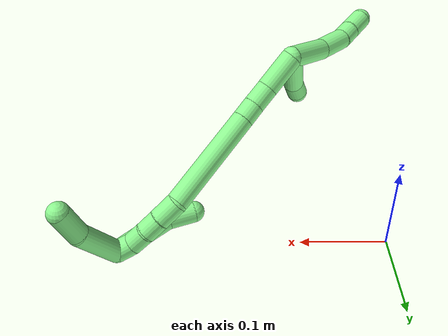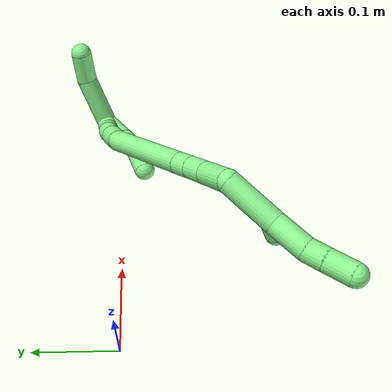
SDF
<sdf version="1.7">
 <world name="default">
  <model name="photoneo_s_sensor">
   <static>1</static>
   <pose>0 0 2 1.57079 1.57079 3.14159</pose>
   <link name="link">
    <inertial><mass>0.1</mass></inertial>
    <sensor name="sensor" type="depth">
     <update_rate>30</update_rate>
     <camera>
      <horizontal_fov>1.22</horizontal_fov>
      <image><width>1920</width><height>1200</height><format>B8G8R8</format></image>
      <clip><near>0.1</near><far>4</far></clip>
      <depth_camera><output>points</output></depth_camera>
     </camera>
     <plugin name="camera_plugin" filename="libgazebo_ros_depth_camera.so">
      <baseline>0.2</baseline>
      <alwaysOn>1</alwaysOn>
      <updateRate>0.0</updateRate>
      <cameraName>camera_ir</cameraName>
      <imageTopicName>/camera/color/image_raw</imageTopicName>
      <cameraInfoTopicName>/camera/color/camera_info</cameraInfoTopicName>
      <depthImageTopicName>/camera/depth/image_raw</depthImageTopicName>
      <depthImageCameraInfoTopicName>/camera/depth/camera_info</depthImageCameraInfoTopicName>
      <pointCloudTopicName>/camera/depth/points</pointCloudTopicName>
      <frameName>fr_optical</frameName>
      <pointCloudCutoff>0.1</pointCloudCutoff>
      <pointCloudCutoffMax>2.0</pointCloudCutoffMax>
      <distortionK1>0</distortionK1>
      <distortionK2>0</distortionK2>
      <distortionK3>0</distortionK3>
      <distortionT1>0</distortionT1>
      <distortionT2>0</distortionT2>
      <CxPrime>0</CxPrime>
      <Cx>0</Cx>
      <Cy>0</Cy>
      <focalLength>0</focalLength>
      <hackBaseline>0</hackBaseline>
     </plugin>
    </sensor>
   </link>
  </model>
  <model name="bin">
   <static>1</static>
   <link name="bottom">
    <collision name="collision-bottom">
     <pose>0 0 -0.01 0 -0 0</pose>
     <geometry><box><size>0.8 0.6 0.02</size></box></geometry>
     <surface>
      <friction><ode><mu>100</mu><mu2>100</mu2></ode></friction>
      <contact><collide_bitmask>65535</collide_bitmask></contact>
     </surface>
    </collision>
   </link>
   <link name="west_wall">
    <collision name="collision-west_wall">
     <pose>-0.41 0 0.1 0 -0 0</pose>
     <geometry><box><size>0.02 0.6 0.2</size></box></geometry>
     <surface>
      <friction><ode><mu>100</mu><mu2>100</mu2></ode></friction>
      <contact><collide_bitmask>65535</collide_bitmask></contact>
     </surface>
    </collision>
   </link>
   <link name="east_wall">
    <collision name="collision-east_wall">
     <pose>0.41 0 0.1 0 -0 0</pose>
     <geometry><box><size>0.02 0.6 0.2</size></box></geometry>
     <surface>
      <friction><ode><mu>100</mu><mu2>100</mu2></ode></friction>
      <contact><collide_bitmask>65535</collide_bitmask></contact>
     </surface>
    </collision>
   </link>
   <link name="south_wall">
    <collision name="collision-south_wall">
     <pose>0 -0.31 0.1 0 -0 0</pose>
     <geometry><box><size>0.8 0.02 0.2</size></box></geometry>
     <surface>
      <friction><ode><mu>100</mu><mu2>100</mu2></ode></friction>
      <contact><collide_bitmask>65535</collide_bitmask></contact>
     </surface>
    </collision>
   </link>
   <link name="north_wall">
    <collision name="collision-north_wall">
     <pose>0 0.31 0.1 0 -0 0</pose>
     <geometry><box><size>0.8 0.02 0.2</size></box></geometry>
     <surface>
      <friction><ode><mu>100</mu><mu2>100</mu2></ode></friction>
      <contact><collide_bitmask>65535</collide_bitmask></contact>
     </surface>
    </collision>
   </link>
  </model>
  <model name="13">
   <static>0</static>
   <link name="13">
    <collision name="collision-cylinder-e_1_2_8">
     <pose>-0.025661 -0.013477 -0.008015 2.10731 -1.02227 -1.55677</pose>
     <geometry><cylinder><radius>0.0125</radius><length>0.060145</length></cylinder></geometry>
     <surface>
      <friction><ode><mu>1.16</mu><mu2>1.16</mu2><slip1>0</slip1><slip2>0</slip2></ode></friction>
      <contact><ode><kp>1e+06</kp><kd>1</kd><max_vel>0</max_vel><min_depth>0.001</min_depth></ode></contact>
     </surface>
    </collision>
    <visual name="visual-cylinder-e_1_2_8">
     <pose>-0.025661 -0.013477 -0.008015 2.10731 -1.02227 -1.55677</pose>
     <geometry><cylinder><radius>0.0125</radius><length>0.060145</length></cylinder></geometry>
     <material><ambient>0.564706 0.984314 0.572549 1</ambient></material>
    </visual>
    <collision name="collision-cylinder-e_2_8_9">
     <pose>-0.069293 -0.035043 -0.017036 1.69451 -1.14502 -1.26067</pose>
     <geometry><cylinder><radius>0.0125</radius><length>0.039466</length></cylinder></geometry>
     <surface>
      <friction><ode><mu>1.16</mu><mu2>1.16</mu2><slip1>0</slip1><slip2>0</slip2></ode></friction>
      <contact><ode><kp>1e+06</kp><kd>1</kd><max_vel>0</max_vel><min_depth>0.001</min_depth></ode></contact>
     </surface>
    </collision>
    <visual name="visual-cylinder-e_2_8_9">
     <pose>-0.069293 -0.035043 -0.017036 1.69451 -1.14502 -1.26067</pose>
     <geometry><cylinder><radius>0.0125</radius><length>0.039466</length></cylinder></geometry>
     <material><ambient>0.564706 0.984314 0.572549 1</ambient></material>
    </visual>
    <collision name="collision-cylinder-e_3_9_10">
     <pose>-0.09587 -0.048945 -0.016996 1.39284 -0.969251 -0.829443</pose>
     <geometry><cylinder><radius>0.0125</radius><length>0.020877</length></cylinder></geometry>
     <surface>
      <friction><ode><mu>1.16</mu><mu2>1.16</mu2><slip1>0</slip1><slip2>0</slip2></ode></friction>
      <contact><ode><kp>1e+06</kp><kd>1</kd><max_vel>0</max_vel><min_depth>0.001</min_depth></ode></contact>
     </surface>
    </collision>
    <visual name="visual-cylinder-e_3_9_10">
     <pose>-0.09587 -0.048945 -0.016996 1.39284 -0.969251 -0.829443</pose>
     <geometry><cylinder><radius>0.0125</radius><length>0.020877</length></cylinder></geometry>
     <material><ambient>0.564706 0.984314 0.572549 1</ambient></material>
    </visual>
    <collision name="collision-cylinder-e_4_10_6">
     <pose>-0.116516 -0.063178 -0.014573 1.40861 -0.954359 -0.827854</pose>
     <geometry><cylinder><radius>0.0125</radius><length>0.029512</length></cylinder></geometry>
     <surface>
      <friction><ode><mu>1.16</mu><mu2>1.16</mu2><slip1>0</slip1><slip2>0</slip2></ode></friction>
      <contact><ode><kp>1e+06</kp><kd>1</kd><max_vel>0</max_vel><min_depth>0.001</min_depth></ode></contact>
     </surface>
    </collision>
    <visual name="visual-cylinder-e_4_10_6">
     <pose>-0.116516 -0.063178 -0.014573 1.40861 -0.954359 -0.827854</pose>
     <geometry><cylinder><radius>0.0125</radius><length>0.029512</length></cylinder></geometry>
     <material><ambient>0.564706 0.984314 0.572549 1</ambient></material>
    </visual>
    <collision name="collision-cylinder-e_1_2_11">
     <pose>-0.011994 -0.018162 -0.032855 2.63662 -0.30925 -1.08694</pose>
     <geometry><cylinder><radius>0.0125</radius><length>0.078821</length></cylinder></geometry>
     <surface>
      <friction><ode><mu>1.16</mu><mu2>1.16</mu2><slip1>0</slip1><slip2>0</slip2></ode></friction>
      <contact><ode><kp>1e+06</kp><kd>1</kd><max_vel>0</max_vel><min_depth>0.001</min_depth></ode></contact>
     </surface>
    </collision>
    <visual name="visual-cylinder-e_1_2_11">
     <pose>-0.011994 -0.018162 -0.032855 2.63662 -0.30925 -1.08694</pose>
     <geometry><cylinder><radius>0.0125</radius><length>0.078821</length></cylinder></geometry>
     <material><ambient>0.564706 0.984314 0.572549 1</ambient></material>
    </visual>
    <collision name="collision-cylinder-e_2_11_5">
     <pose>-0.028158 -0.037962 -0.075306 2.97241 -0.404713 -2.35778</pose>
     <geometry><cylinder><radius>0.0125</radius><length>0.021179</length></cylinder></geometry>
     <surface>
      <friction><ode><mu>1.16</mu><mu2>1.16</mu2><slip1>0</slip1><slip2>0</slip2></ode></friction>
      <contact><ode><kp>1e+06</kp><kd>1</kd><max_vel>0</max_vel><min_depth>0.001</min_depth></ode></contact>
     </surface>
    </collision>
    <visual name="visual-cylinder-e_2_11_5">
     <pose>-0.028158 -0.037962 -0.075306 2.97241 -0.404713 -2.35778</pose>
     <geometry><cylinder><radius>0.0125</radius><length>0.021179</length></cylinder></geometry>
     <material><ambient>0.564706 0.984314 0.572549 1</ambient></material>
    </visual>
    <collision name="collision-cylinder-e_1_2_12">
     <pose>0.016522 0.005661 -0.013792 -2.75212 0.836673 -2.30647</pose>
     <geometry><cylinder><radius>0.0125</radius><length>0.044509</length></cylinder></geometry>
     <surface>
      <friction><ode><mu>1.16</mu><mu2>1.16</mu2><slip1>0</slip1><slip2>0</slip2></ode></friction>
      <contact><ode><kp>1e+06</kp><kd>1</kd><max_vel>0</max_vel><min_depth>0.001</min_depth></ode></contact>
     </surface>
    </collision>
    <visual name="visual-cylinder-e_1_2_12">
     <pose>0.016522 0.005661 -0.013792 -2.75212 0.836673 -2.30647</pose>
     <geometry><cylinder><radius>0.0125</radius><length>0.044509</length></cylinder></geometry>
     <material><ambient>0.564706 0.984314 0.572549 1</ambient></material>
    </visual>
    <collision name="collision-cylinder-e_2_12_13">
     <pose>0.043019 0.016233 -0.033821 -2.4745 0.89869 -1.89554</pose>
     <geometry><cylinder><radius>0.0125</radius><length>0.025495</length></cylinder></geometry>
     <surface>
      <friction><ode><mu>1.16</mu><mu2>1.16</mu2><slip1>0</slip1><slip2>0</slip2></ode></friction>
      <contact><ode><kp>1e+06</kp><kd>1</kd><max_vel>0</max_vel><min_depth>0.001</min_depth></ode></contact>
     </surface>
    </collision>
    <visual name="visual-cylinder-e_2_12_13">
     <pose>0.043019 0.016233 -0.033821 -2.4745 0.89869 -1.89554</pose>
     <geometry><cylinder><radius>0.0125</radius><length>0.025495</length></cylinder></geometry>
     <material><ambient>0.564706 0.984314 0.572549 1</ambient></material>
    </visual>
    <collision name="collision-cylinder-e_3_13_14">
     <pose>0.061085 0.025595 -0.044755 -2.38316 0.89602 -1.75703</pose>
     <geometry><cylinder><radius>0.0125</radius><length>0.020722</length></cylinder></geometry>
     <surface>
      <friction><ode><mu>1.16</mu><mu2>1.16</mu2><slip1>0</slip1><slip2>0</slip2></ode></friction>
      <contact><ode><kp>1e+06</kp><kd>1</kd><max_vel>0</max_vel><min_depth>0.001</min_depth></ode></contact>
     </surface>
    </collision>
    <visual name="visual-cylinder-e_3_13_14">
     <pose>0.061085 0.025595 -0.044755 -2.38316 0.89602 -1.75703</pose>
     <geometry><cylinder><radius>0.0125</radius><length>0.020722</length></cylinder></geometry>
     <material><ambient>0.564706 0.984314 0.572549 1</ambient></material>
    </visual>
    <collision name="collision-cylinder-e_4_14_15">
     <pose>0.115776 0.055115 -0.076265 -2.38979 0.903627 -1.77605</pose>
     <geometry><cylinder><radius>0.0125</radius><length>0.11864</length></cylinder></geometry>
     <surface>
      <friction><ode><mu>1.16</mu><mu2>1.16</mu2><slip1>0</slip1><slip2>0</slip2></ode></friction>
      <contact><ode><kp>1e+06</kp><kd>1</kd><max_vel>0</max_vel><min_depth>0.001</min_depth></ode></contact>
     </surface>
    </collision>
    <visual name="visual-cylinder-e_4_14_15">
     <pose>0.115776 0.055115 -0.076265 -2.38979 0.903627 -1.77605</pose>
     <geometry><cylinder><radius>0.0125</radius><length>0.11864</length></cylinder></geometry>
     <material><ambient>0.564706 0.984314 0.572549 1</ambient></material>
    </visual>
    <collision name="collision-cylinder-e_5_15_16">
     <pose>0.173384 0.081888 -0.11117 -2.93393 0.926432 -2.73022</pose>
     <geometry><cylinder><radius>0.0125</radius><length>0.027538</length></cylinder></geometry>
     <surface>
      <friction><ode><mu>1.16</mu><mu2>1.16</mu2><slip1>0</slip1><slip2>0</slip2></ode></friction>
      <contact><ode><kp>1e+06</kp><kd>1</kd><max_vel>0</max_vel><min_depth>0.001</min_depth></ode></contact>
     </surface>
    </collision>
    <visual name="visual-cylinder-e_5_15_16">
     <pose>0.173384 0.081888 -0.11117 -2.93393 0.926432 -2.73022</pose>
     <geometry><cylinder><radius>0.0125</radius><length>0.027538</length></cylinder></geometry>
     <material><ambient>0.564706 0.984314 0.572549 1</ambient></material>
    </visual>
    <collision name="collision-cylinder-e_6_16_17">
     <pose>0.192824 0.084448 -0.12586 -3.01286 0.902896 -2.87726</pose>
     <geometry><cylinder><radius>0.0125</radius><length>0.02148</length></cylinder></geometry>
     <surface>
      <friction><ode><mu>1.16</mu><mu2>1.16</mu2><slip1>0</slip1><slip2>0</slip2></ode></friction>
      <contact><ode><kp>1e+06</kp><kd>1</kd><max_vel>0</max_vel><min_depth>0.001</min_depth></ode></contact>
     </surface>
    </collision>
    <visual name="visual-cylinder-e_6_16_17">
     <pose>0.192824 0.084448 -0.12586 -3.01286 0.902896 -2.87726</pose>
     <geometry><cylinder><radius>0.0125</radius><length>0.02148</length></cylinder></geometry>
     <material><ambient>0.564706 0.984314 0.572549 1</ambient></material>
    </visual>
    <collision name="collision-cylinder-e_7_17_18">
     <pose>0.208862 0.084409 -0.140024 3.02423 0.784403 2.85941</pose>
     <geometry><cylinder><radius>0.0125</radius><length>0.021531</length></cylinder></geometry>
     <surface>
      <friction><ode><mu>1.16</mu><mu2>1.16</mu2><slip1>0</slip1><slip2>0</slip2></ode></friction>
      <contact><ode><kp>1e+06</kp><kd>1</kd><max_vel>0</max_vel><min_depth>0.001</min_depth></ode></contact>
     </surface>
    </collision>
    <visual name="visual-cylinder-e_7_17_18">
     <pose>0.208862 0.084409 -0.140024 3.02423 0.784403 2.85941</pose>
     <geometry><cylinder><radius>0.0125</radius><length>0.021531</length></cylinder></geometry>
     <material><ambient>0.564706 0.984314 0.572549 1</ambient></material>
    </visual>
    <collision name="collision-cylinder-e_8_18_1">
     <pose>0.225426 0.082752 -0.152062 2.97214 1.10224 2.86699</pose>
     <geometry><cylinder><radius>0.0125</radius><length>0.020085</length></cylinder></geometry>
     <surface>
      <friction><ode><mu>1.16</mu><mu2>1.16</mu2><slip1>0</slip1><slip2>0</slip2></ode></friction>
      <contact><ode><kp>1e+06</kp><kd>1</kd><max_vel>0</max_vel><min_depth>0.001</min_depth></ode></contact>
     </surface>
    </collision>
    <visual name="visual-cylinder-e_8_18_1">
     <pose>0.225426 0.082752 -0.152062 2.97214 1.10224 2.86699</pose>
     <geometry><cylinder><radius>0.0125</radius><length>0.020085</length></cylinder></geometry>
     <material><ambient>0.564706 0.984314 0.572549 1</ambient></material>
    </visual>
    <collision name="collision-cylinder-e_1_1_19">
     <pose>0.21652 0.075465 -0.154713 1.29873 -1.20854 -0.965591</pose>
     <geometry><cylinder><radius>0.0125</radius><length>0.038213</length></cylinder></geometry>
     <surface>
      <friction><ode><mu>1.16</mu><mu2>1.16</mu2><slip1>0</slip1><slip2>0</slip2></ode></friction>
      <contact><ode><kp>1e+06</kp><kd>1</kd><max_vel>0</max_vel><min_depth>0.001</min_depth></ode></contact>
     </surface>
    </collision>
    <visual name="visual-cylinder-e_1_1_19">
     <pose>0.21652 0.075465 -0.154713 1.29873 -1.20854 -0.965591</pose>
     <geometry><cylinder><radius>0.0125</radius><length>0.038213</length></cylinder></geometry>
     <material><ambient>0.564706 0.984314 0.572549 1</ambient></material>
    </visual>
    <collision name="collision-cylinder-e_2_19_20">
     <pose>0.184625 0.064868 -0.150438 1.02859 -1.2438 -0.769596</pose>
     <geometry><cylinder><radius>0.0125</radius><length>0.029626</length></cylinder></geometry>
     <surface>
      <friction><ode><mu>1.16</mu><mu2>1.16</mu2><slip1>0</slip1><slip2>0</slip2></ode></friction>
      <contact><ode><kp>1e+06</kp><kd>1</kd><max_vel>0</max_vel><min_depth>0.001</min_depth></ode></contact>
     </surface>
    </collision>
    <visual name="visual-cylinder-e_2_19_20">
     <pose>0.184625 0.064868 -0.150438 1.02859 -1.2438 -0.769596</pose>
     <geometry><cylinder><radius>0.0125</radius><length>0.029626</length></cylinder></geometry>
     <material><ambient>0.564706 0.984314 0.572549 1</ambient></material>
    </visual>
    <collision name="collision-cylinder-e_3_20_4">
     <pose>0.154522 0.060378 -0.147862 1.28878 -1.54396 -1.2631</pose>
     <geometry><cylinder><radius>0.0125</radius><length>0.032161</length></cylinder></geometry>
     <surface>
      <friction><ode><mu>1.16</mu><mu2>1.16</mu2><slip1>0</slip1><slip2>0</slip2></ode></friction>
      <contact><ode><kp>1e+06</kp><kd>1</kd><max_vel>0</max_vel><min_depth>0.001</min_depth></ode></contact>
     </surface>
    </collision>
    <visual name="visual-cylinder-e_3_20_4">
     <pose>0.154522 0.060378 -0.147862 1.28878 -1.54396 -1.2631</pose>
     <geometry><cylinder><radius>0.0125</radius><length>0.032161</length></cylinder></geometry>
     <material><ambient>0.564706 0.984314 0.572549 1</ambient></material>
    </visual>
    <collision name="collision-cylinder-e_1_1_21">
     <pose>0.252477 0.085442 -0.130833 -0.133628 0.609169 -0.042065</pose>
     <geometry><cylinder><radius>0.0125</radius><length>0.063234</length></cylinder></geometry>
     <surface>
      <friction><ode><mu>1.16</mu><mu2>1.16</mu2><slip1>0</slip1><slip2>0</slip2></ode></friction>
      <contact><ode><kp>1e+06</kp><kd>1</kd><max_vel>0</max_vel><min_depth>0.001</min_depth></ode></contact>
     </surface>
    </collision>
    <visual name="visual-cylinder-e_1_1_21">
     <pose>0.252477 0.085442 -0.130833 -0.133628 0.609169 -0.042065</pose>
     <geometry><cylinder><radius>0.0125</radius><length>0.063234</length></cylinder></geometry>
     <material><ambient>0.564706 0.984314 0.572549 1</ambient></material>
    </visual>
    <collision name="collision-cylinder-e_2_21_3">
     <pose>0.277617 0.087036 -0.088259 0.109842 0.393523 0.021917</pose>
     <geometry><cylinder><radius>0.0125</radius><length>0.036766</length></cylinder></geometry>
     <surface>
      <friction><ode><mu>1.16</mu><mu2>1.16</mu2><slip1>0</slip1><slip2>0</slip2></ode></friction>
      <contact><ode><kp>1e+06</kp><kd>1</kd><max_vel>0</max_vel><min_depth>0.001</min_depth></ode></contact>
     </surface>
    </collision>
    <visual name="visual-cylinder-e_2_21_3">
     <pose>0.277617 0.087036 -0.088259 0.109842 0.393523 0.021917</pose>
     <geometry><cylinder><radius>0.0125</radius><length>0.036766</length></cylinder></geometry>
     <material><ambient>0.564706 0.984314 0.572549 1</ambient></material>
    </visual>
    <collision name="collision-sphere-3">
     <pose>0.284666 0.085174 -0.071384 0 -0 0</pose>
     <geometry><sphere><radius>0.0125</radius></sphere></geometry>
     <surface>
      <friction><ode><mu>1.16</mu><mu2>1.16</mu2><slip1>0</slip1><slip2>0</slip2></ode></friction>
      <contact><ode><kp>1e+06</kp><kd>1</kd><max_vel>0</max_vel><min_depth>0.001</min_depth></ode></contact>
     </surface>
    </collision>
    <visual name="visual-sphere-3">
     <pose>0.284666 0.085174 -0.071384 0 -0 0</pose>
     <geometry><sphere><radius>0.0125</radius></sphere></geometry>
     <material><ambient>0.564706 0.984314 0.572549 1</ambient></material>
    </visual>
    <collision name="collision-sphere-21">
     <pose>0.270568 0.088897 -0.105135 0 -0 0</pose>
     <geometry><sphere><radius>0.0125</radius></sphere></geometry>
     <surface>
      <friction><ode><mu>1.16</mu><mu2>1.16</mu2><slip1>0</slip1><slip2>0</slip2></ode></friction>
      <contact><ode><kp>1e+06</kp><kd>1</kd><max_vel>0</max_vel><min_depth>0.001</min_depth></ode></contact>
     </surface>
    </collision>
    <visual name="visual-sphere-21">
     <pose>0.270568 0.088897 -0.105135 0 -0 0</pose>
     <geometry><sphere><radius>0.0125</radius></sphere></geometry>
     <material><ambient>0.564706 0.984314 0.572549 1</ambient></material>
    </visual>
    <collision name="collision-sphere-4">
     <pose>0.138448 0.059963 -0.147742 0 -0 0</pose>
     <geometry><sphere><radius>0.0125</radius></sphere></geometry>
     <surface>
      <friction><ode><mu>1.16</mu><mu2>1.16</mu2><slip1>0</slip1><slip2>0</slip2></ode></friction>
      <contact><ode><kp>1e+06</kp><kd>1</kd><max_vel>0</max_vel><min_depth>0.001</min_depth></ode></contact>
     </surface>
    </collision>
    <visual name="visual-sphere-4">
     <pose>0.138448 0.059963 -0.147742 0 -0 0</pose>
     <geometry><sphere><radius>0.0125</radius></sphere></geometry>
     <material><ambient>0.564706 0.984314 0.572549 1</ambient></material>
    </visual>
    <collision name="collision-sphere-20">
     <pose>0.170597 0.060792 -0.147982 0 -0 0</pose>
     <geometry><sphere><radius>0.0125</radius></sphere></geometry>
     <surface>
      <friction><ode><mu>1.16</mu><mu2>1.16</mu2><slip1>0</slip1><slip2>0</slip2></ode></friction>
      <contact><ode><kp>1e+06</kp><kd>1</kd><max_vel>0</max_vel><min_depth>0.001</min_depth></ode></contact>
     </surface>
    </collision>
    <visual name="visual-sphere-20">
     <pose>0.170597 0.060792 -0.147982 0 -0 0</pose>
     <geometry><sphere><radius>0.0125</radius></sphere></geometry>
     <material><ambient>0.564706 0.984314 0.572549 1</ambient></material>
    </visual>
    <collision name="collision-sphere-11">
     <pose>-0.023989 -0.036323 -0.06571 0 -0 0</pose>
     <geometry><sphere><radius>0.0125</radius></sphere></geometry>
     <surface>
      <friction><ode><mu>1.16</mu><mu2>1.16</mu2><slip1>0</slip1><slip2>0</slip2></ode></friction>
      <contact><ode><kp>1e+06</kp><kd>1</kd><max_vel>0</max_vel><min_depth>0.001</min_depth></ode></contact>
     </surface>
    </collision>
    <visual name="visual-sphere-11">
     <pose>-0.023989 -0.036323 -0.06571 0 -0 0</pose>
     <geometry><sphere><radius>0.0125</radius></sphere></geometry>
     <material><ambient>0.564706 0.984314 0.572549 1</ambient></material>
    </visual>
    <collision name="collision-sphere-6">
     <pose>-0.128556 -0.071597 -0.013195 0 -0 0</pose>
     <geometry><sphere><radius>0.0125</radius></sphere></geometry>
     <surface>
      <friction><ode><mu>1.16</mu><mu2>1.16</mu2><slip1>0</slip1><slip2>0</slip2></ode></friction>
      <contact><ode><kp>1e+06</kp><kd>1</kd><max_vel>0</max_vel><min_depth>0.001</min_depth></ode></contact>
     </surface>
    </collision>
    <visual name="visual-sphere-6">
     <pose>-0.128556 -0.071597 -0.013195 0 -0 0</pose>
     <geometry><sphere><radius>0.0125</radius></sphere></geometry>
     <material><ambient>0.564706 0.984314 0.572549 1</ambient></material>
    </visual>
    <collision name="collision-sphere-10">
     <pose>-0.104476 -0.054759 -0.01595 0 -0 0</pose>
     <geometry><sphere><radius>0.0125</radius></sphere></geometry>
     <surface>
      <friction><ode><mu>1.16</mu><mu2>1.16</mu2><slip1>0</slip1><slip2>0</slip2></ode></friction>
      <contact><ode><kp>1e+06</kp><kd>1</kd><max_vel>0</max_vel><min_depth>0.001</min_depth></ode></contact>
     </surface>
    </collision>
    <visual name="visual-sphere-10">
     <pose>-0.104476 -0.054759 -0.01595 0 -0 0</pose>
     <geometry><sphere><radius>0.0125</radius></sphere></geometry>
     <material><ambient>0.564706 0.984314 0.572549 1</ambient></material>
    </visual>
    <collision name="collision-sphere-9">
     <pose>-0.087264 -0.043131 -0.018042 0 -0 0</pose>
     <geometry><sphere><radius>0.0125</radius></sphere></geometry>
     <surface>
      <friction><ode><mu>1.16</mu><mu2>1.16</mu2><slip1>0</slip1><slip2>0</slip2></ode></friction>
      <contact><ode><kp>1e+06</kp><kd>1</kd><max_vel>0</max_vel><min_depth>0.001</min_depth></ode></contact>
     </surface>
    </collision>
    <visual name="visual-sphere-9">
     <pose>-0.087264 -0.043131 -0.018042 0 -0 0</pose>
     <geometry><sphere><radius>0.0125</radius></sphere></geometry>
     <material><ambient>0.564706 0.984314 0.572549 1</ambient></material>
    </visual>
    <collision name="collision-sphere-2">
     <geometry><sphere><radius>0.0125</radius></sphere></geometry>
     <surface>
      <friction><ode><mu>1.16</mu><mu2>1.16</mu2><slip1>0</slip1><slip2>0</slip2></ode></friction>
      <contact><ode><kp>1e+06</kp><kd>1</kd><max_vel>0</max_vel><min_depth>0.001</min_depth></ode></contact>
     </surface>
    </collision>
    <visual name="visual-sphere-2">
     <geometry><sphere><radius>0.0125</radius></sphere></geometry>
     <material><ambient>0.564706 0.984314 0.572549 1</ambient></material>
    </visual>
    <collision name="collision-sphere-19">
     <pose>0.198653 0.068943 -0.152893 0 -0 0</pose>
     <geometry><sphere><radius>0.0125</radius></sphere></geometry>
     <surface>
      <friction><ode><mu>1.16</mu><mu2>1.16</mu2><slip1>0</slip1><slip2>0</slip2></ode></friction>
      <contact><ode><kp>1e+06</kp><kd>1</kd><max_vel>0</max_vel><min_depth>0.001</min_depth></ode></contact>
     </surface>
    </collision>
    <visual name="visual-sphere-19">
     <pose>0.198653 0.068943 -0.152893 0 -0 0</pose>
     <geometry><sphere><radius>0.0125</radius></sphere></geometry>
     <material><ambient>0.564706 0.984314 0.572549 1</ambient></material>
    </visual>
    <collision name="collision-sphere-8">
     <pose>-0.051322 -0.026955 -0.01603 0 -0 0</pose>
     <geometry><sphere><radius>0.0125</radius></sphere></geometry>
     <surface>
      <friction><ode><mu>1.16</mu><mu2>1.16</mu2><slip1>0</slip1><slip2>0</slip2></ode></friction>
      <contact><ode><kp>1e+06</kp><kd>1</kd><max_vel>0</max_vel><min_depth>0.001</min_depth></ode></contact>
     </surface>
    </collision>
    <visual name="visual-sphere-8">
     <pose>-0.051322 -0.026955 -0.01603 0 -0 0</pose>
     <geometry><sphere><radius>0.0125</radius></sphere></geometry>
     <material><ambient>0.564706 0.984314 0.572549 1</ambient></material>
    </visual>
    <collision name="collision-sphere-5">
     <pose>-0.032328 -0.039601 -0.084901 0 -0 0</pose>
     <geometry><sphere><radius>0.0125</radius></sphere></geometry>
     <surface>
      <friction><ode><mu>1.16</mu><mu2>1.16</mu2><slip1>0</slip1><slip2>0</slip2></ode></friction>
      <contact><ode><kp>1e+06</kp><kd>1</kd><max_vel>0</max_vel><min_depth>0.001</min_depth></ode></contact>
     </surface>
    </collision>
    <visual name="visual-sphere-5">
     <pose>-0.032328 -0.039601 -0.084901 0 -0 0</pose>
     <geometry><sphere><radius>0.0125</radius></sphere></geometry>
     <material><ambient>0.564706 0.984314 0.572549 1</ambient></material>
    </visual>
    <collision name="collision-sphere-12">
     <pose>0.033044 0.011322 -0.027585 0 -0 0</pose>
     <geometry><sphere><radius>0.0125</radius></sphere></geometry>
     <surface>
      <friction><ode><mu>1.16</mu><mu2>1.16</mu2><slip1>0</slip1><slip2>0</slip2></ode></friction>
      <contact><ode><kp>1e+06</kp><kd>1</kd><max_vel>0</max_vel><min_depth>0.001</min_depth></ode></contact>
     </surface>
    </collision>
    <visual name="visual-sphere-12">
     <pose>0.033044 0.011322 -0.027585 0 -0 0</pose>
     <geometry><sphere><radius>0.0125</radius></sphere></geometry>
     <material><ambient>0.564706 0.984314 0.572549 1</ambient></material>
    </visual>
    <collision name="collision-sphere-13">
     <pose>0.052994 0.021143 -0.040056 0 -0 0</pose>
     <geometry><sphere><radius>0.0125</radius></sphere></geometry>
     <surface>
      <friction><ode><mu>1.16</mu><mu2>1.16</mu2><slip1>0</slip1><slip2>0</slip2></ode></friction>
      <contact><ode><kp>1e+06</kp><kd>1</kd><max_vel>0</max_vel><min_depth>0.001</min_depth></ode></contact>
     </surface>
    </collision>
    <visual name="visual-sphere-13">
     <pose>0.052994 0.021143 -0.040056 0 -0 0</pose>
     <geometry><sphere><radius>0.0125</radius></sphere></geometry>
     <material><ambient>0.564706 0.984314 0.572549 1</ambient></material>
    </visual>
    <collision name="collision-sphere-14">
     <pose>0.069175 0.030047 -0.049453 0 -0 0</pose>
     <geometry><sphere><radius>0.0125</radius></sphere></geometry>
     <surface>
      <friction><ode><mu>1.16</mu><mu2>1.16</mu2><slip1>0</slip1><slip2>0</slip2></ode></friction>
      <contact><ode><kp>1e+06</kp><kd>1</kd><max_vel>0</max_vel><min_depth>0.001</min_depth></ode></contact>
     </surface>
    </collision>
    <visual name="visual-sphere-14">
     <pose>0.069175 0.030047 -0.049453 0 -0 0</pose>
     <geometry><sphere><radius>0.0125</radius></sphere></geometry>
     <material><ambient>0.564706 0.984314 0.572549 1</ambient></material>
    </visual>
    <collision name="collision-sphere-15">
     <pose>0.162376 0.080183 -0.103077 0 -0 0</pose>
     <geometry><sphere><radius>0.0125</radius></sphere></geometry>
     <surface>
      <friction><ode><mu>1.16</mu><mu2>1.16</mu2><slip1>0</slip1><slip2>0</slip2></ode></friction>
      <contact><ode><kp>1e+06</kp><kd>1</kd><max_vel>0</max_vel><min_depth>0.001</min_depth></ode></contact>
     </surface>
    </collision>
    <visual name="visual-sphere-15">
     <pose>0.162376 0.080183 -0.103077 0 -0 0</pose>
     <geometry><sphere><radius>0.0125</radius></sphere></geometry>
     <material><ambient>0.564706 0.984314 0.572549 1</ambient></material>
    </visual>
    <collision name="collision-sphere-16">
     <pose>0.184392 0.083594 -0.119263 0 -0 0</pose>
     <geometry><sphere><radius>0.0125</radius></sphere></geometry>
     <surface>
      <friction><ode><mu>1.16</mu><mu2>1.16</mu2><slip1>0</slip1><slip2>0</slip2></ode></friction>
      <contact><ode><kp>1e+06</kp><kd>1</kd><max_vel>0</max_vel><min_depth>0.001</min_depth></ode></contact>
     </surface>
    </collision>
    <visual name="visual-sphere-16">
     <pose>0.184392 0.083594 -0.119263 0 -0 0</pose>
     <geometry><sphere><radius>0.0125</radius></sphere></geometry>
     <material><ambient>0.564706 0.984314 0.572549 1</ambient></material>
    </visual>
    <collision name="collision-sphere-17">
     <pose>0.201257 0.085302 -0.132457 0 -0 0</pose>
     <geometry><sphere><radius>0.0125</radius></sphere></geometry>
     <surface>
      <friction><ode><mu>1.16</mu><mu2>1.16</mu2><slip1>0</slip1><slip2>0</slip2></ode></friction>
      <contact><ode><kp>1e+06</kp><kd>1</kd><max_vel>0</max_vel><min_depth>0.001</min_depth></ode></contact>
     </surface>
    </collision>
    <visual name="visual-sphere-17">
     <pose>0.201257 0.085302 -0.132457 0 -0 0</pose>
     <geometry><sphere><radius>0.0125</radius></sphere></geometry>
     <material><ambient>0.564706 0.984314 0.572549 1</ambient></material>
    </visual>
    <collision name="collision-sphere-18">
     <pose>0.216466 0.083517 -0.147592 0 -0 0</pose>
     <geometry><sphere><radius>0.0125</radius></sphere></geometry>
     <surface>
      <friction><ode><mu>1.16</mu><mu2>1.16</mu2><slip1>0</slip1><slip2>0</slip2></ode></friction>
      <contact><ode><kp>1e+06</kp><kd>1</kd><max_vel>0</max_vel><min_depth>0.001</min_depth></ode></contact>
     </surface>
    </collision>
    <visual name="visual-sphere-18">
     <pose>0.216466 0.083517 -0.147592 0 -0 0</pose>
     <geometry><sphere><radius>0.0125</radius></sphere></geometry>
     <material><ambient>0.564706 0.984314 0.572549 1</ambient></material>
    </visual>
    <collision name="collision-sphere-1">
     <pose>0.234386 0.081987 -0.156532 0 -0 0</pose>
     <geometry><sphere><radius>0.0125</radius></sphere></geometry>
     <surface>
      <friction><ode><mu>1.16</mu><mu2>1.16</mu2><slip1>0</slip1><slip2>0</slip2></ode></friction>
      <contact><ode><kp>1e+06</kp><kd>1</kd><max_vel>0</max_vel><min_depth>0.001</min_depth></ode></contact>
     </surface>
    </collision>
    <visual name="visual-sphere-1">
     <pose>0.234386 0.081987 -0.156532 0 -0 0</pose>
     <geometry><sphere><radius>0.0125</radius></sphere></geometry>
     <material><ambient>0.564706 0.984314 0.572549 1</ambient></material>
    </visual>
    <inertial>
     <pose>0.0912 0.031091 -0.074736 0 -0 0</pose>
     <mass>0.75</mass>
     <inertia>
      <ixx>-0.000128</ixx>
      <ixy>0</ixy>
      <ixz>0</ixz>
      <iyy>1.4e-05</iyy>
      <iyz>0</iyz>
      <izz>-0.000131</izz>
     </inertia>
    </inertial>
   </link>
   <pose>0.109641 -0.114008 0.180436 -0.092855 0.019256 0.325099</pose>
  </model>
 </world>
</sdf>
